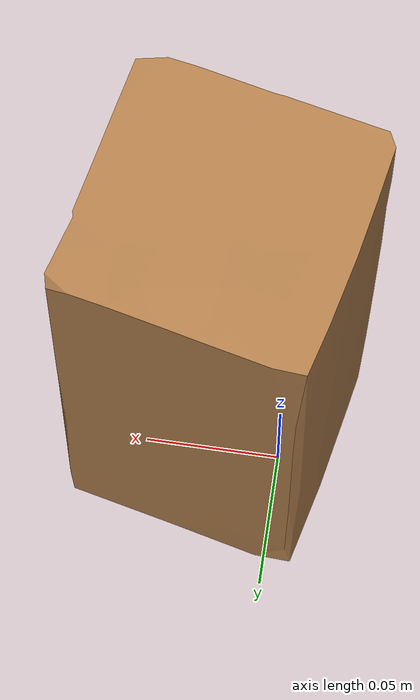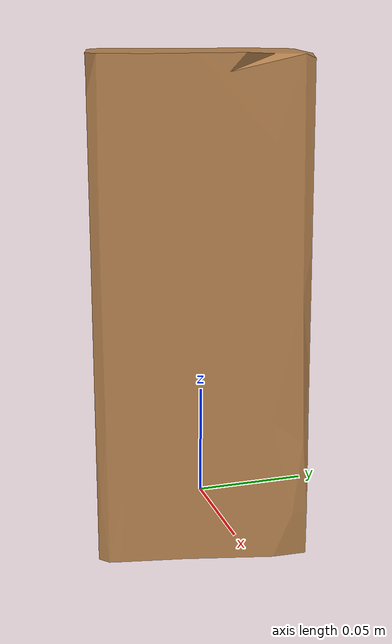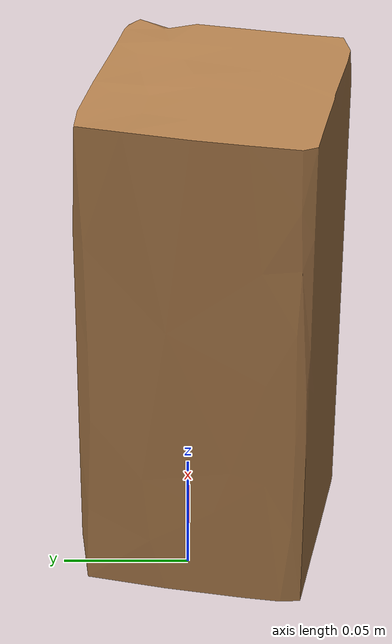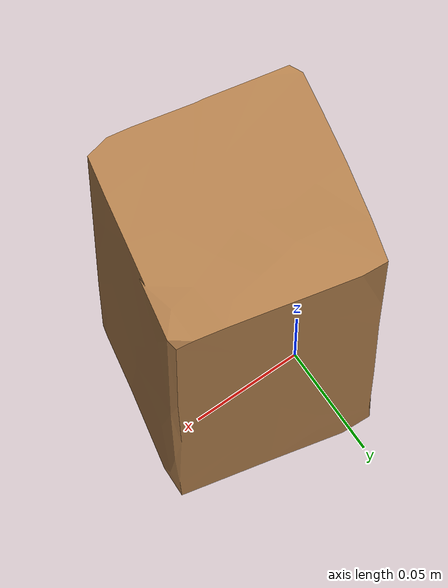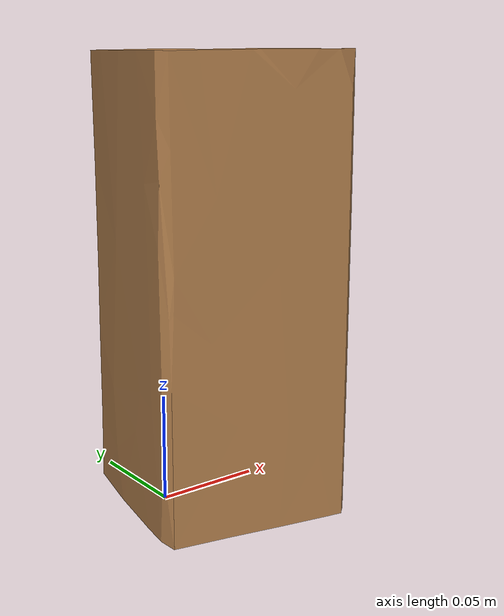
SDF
<?xml version='1.0'?>
<sdf version="1.4">
  <model name="036_wood_block">
    <static>false</static>
    <link name="link">
      <inertial>
        <pose>0.023524506215178445 -0.010402908048746952 0.10290508338553672 0.0037331157482622178 0.008881159137067643 -2.0180261030905955</pose>
        <mass>0.16051915447476514</mass>
        <inertia>
          <ixx>0.0006690621453483418</ixx>
          <ixy>5.683590283641935e-20</ixy>
          <ixz>-7.306775624616407e-20</ixz>
          <iyy>0.0006658857038068514</iyy>
          <iyz>4.696525250593354e-21</iyz>
          <izz>0.00020806348318364287</izz>
        </inertia>
      </inertial>
      <collision name="collision">
        <geometry>
          <mesh>
            <!-- Use a downsampled mesh for collisions -->
            <uri>model:///036_wood_block/036_wood_block_250_collision.stl</uri>
	        </mesh>
        </geometry>
        <surface>
      </surface>
      </collision>
      <visual name="visual">
        <geometry>
          <mesh>
            <uri>model:///036_wood_block/textured.obj</uri>
	        </mesh>
        </geometry>
        <material>
          <script>
            <uri>model:///036_wood_block/036_wood_block.material</uri>
            <name>036_wood_block</name>
          </script>
        </material>
      </visual>
    </link>
  </model>
</sdf>
